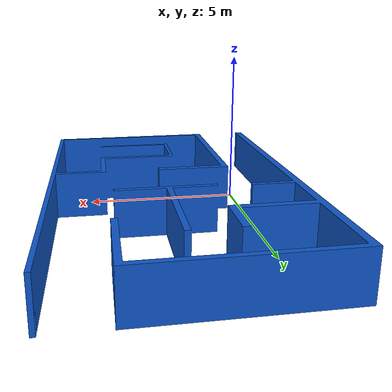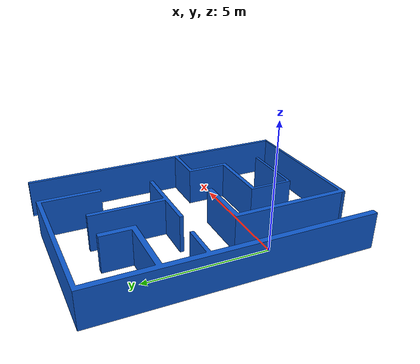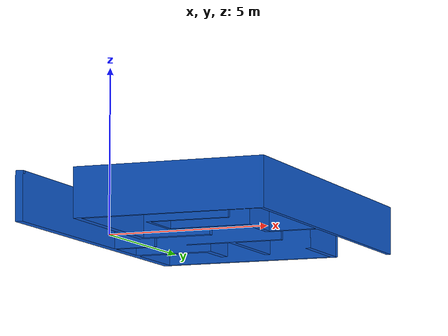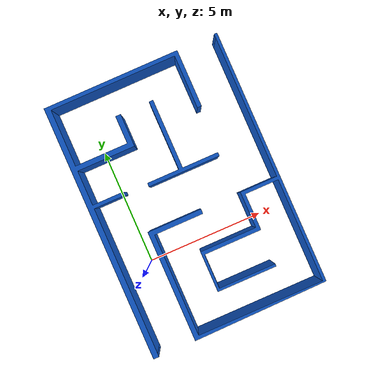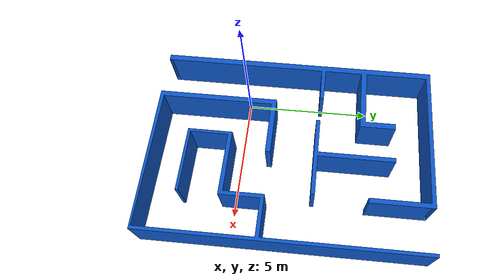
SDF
<?xml version="1.0" ?>
<sdf version="1.7">
  <model name="maze_model_rs_door">
    <pose>0 0 0 0 0 0</pose>
    <static>true</static>
    <link name="body">
      <visual name="visual">
        <geometry>
          <mesh><uri>model://maze_model_rs_door/media/maze.dae</uri></mesh>
        </geometry>
      </visual>
      <collision name="collision">
        <geometry>
          <mesh><uri>model://maze_model_rs_door/media/maze.dae</uri></mesh>
        </geometry>
      </collision>
    </link>
  </model>
</sdf>
